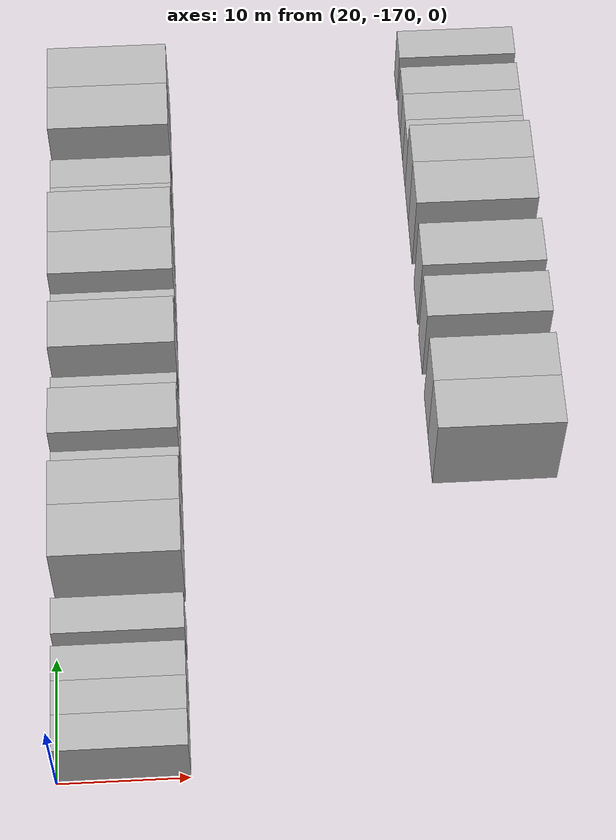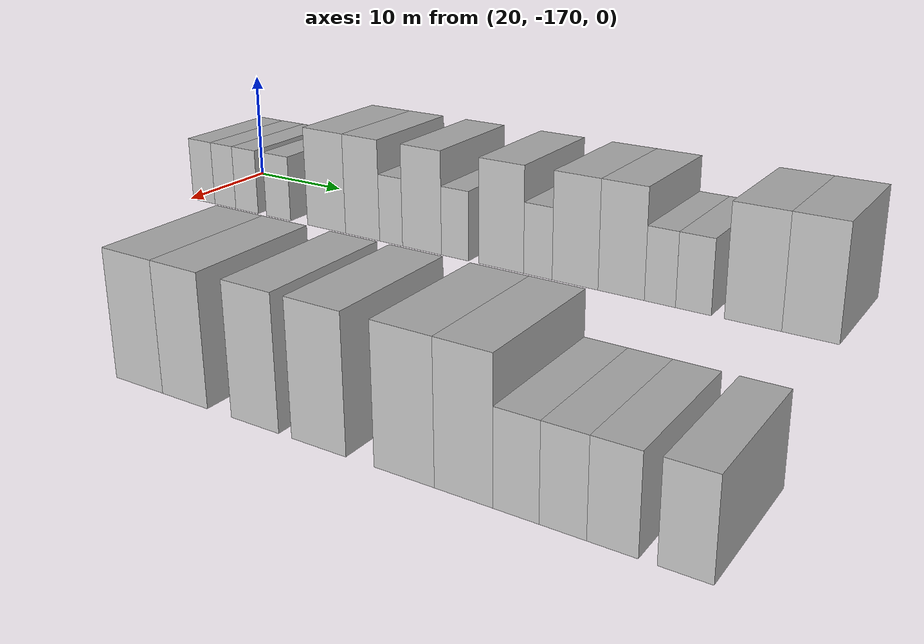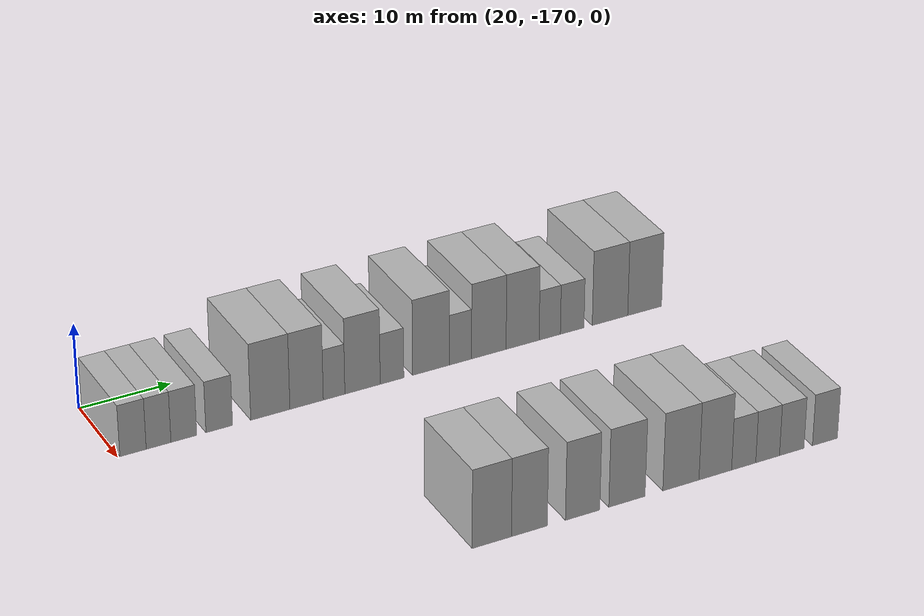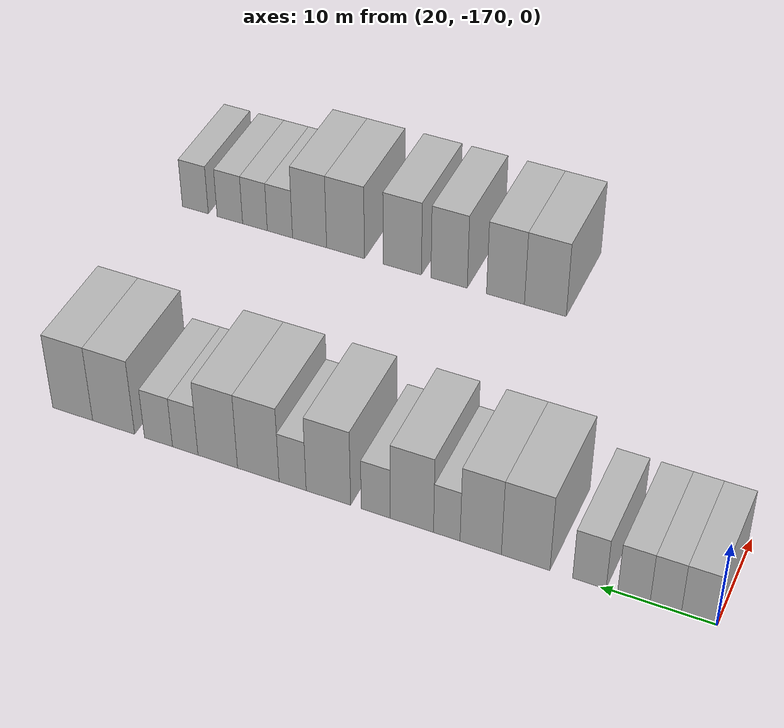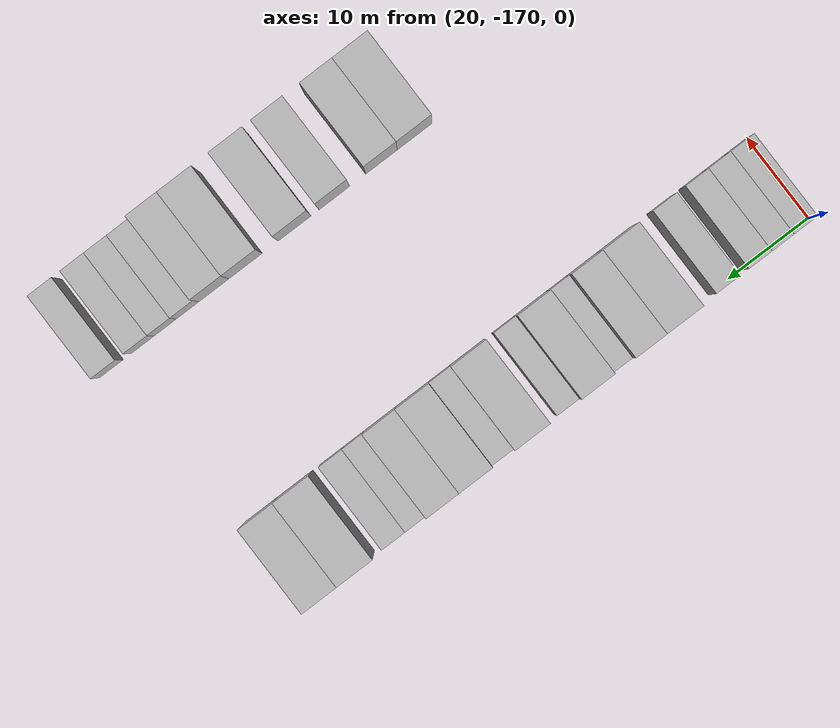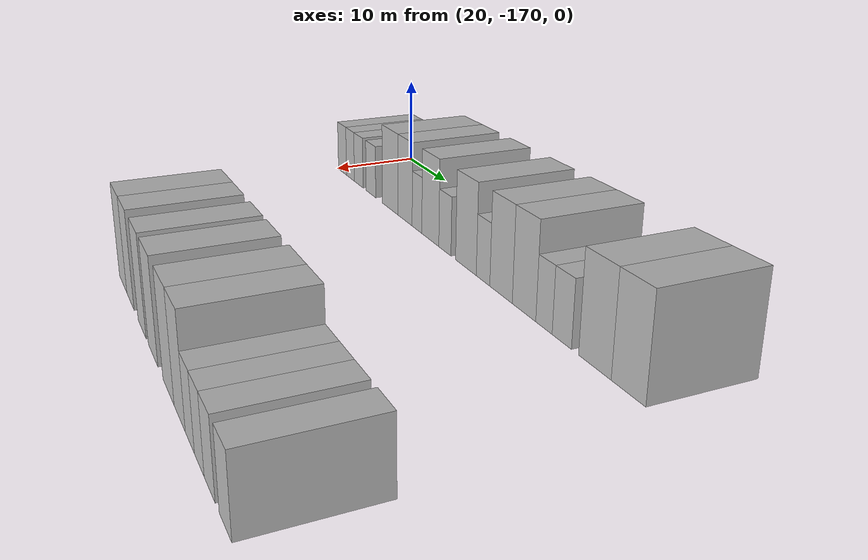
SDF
<sdf version="1.6">
 <world name="default">
  <model name="building_14">
   <static>1</static>
   <pose>25.0000 -168.3456 0 0.000000 0.000000 0.000000</pose>
   <link name="link">
    <pose>0 0 3.00 0 0 0</pose>
    <collision name="collision"><geometry><box><size>10.0000 2.8377 6.0000</size></box></geometry></collision>
    <visual name="visual">
     <cast_shadows>0</cast_shadows>
     <geometry><box><size>10.0000 2.8377 6.0000</size></box></geometry>
     <material>
      <script>
       <uri>model://HANNAS_wall/materials/scripts</uri>
       <uri>model://HANNAS_wall/materials/textures</uri>
       <name>vrc/HANNAS_wall</name>
      </script>
     </material>
    </visual>
   </link>
  </model>
  <model name="building_15">
   <static>1</static>
   <pose>25.0000 -165.5896 0 0.000000 0.000000 0.000000</pose>
   <link name="link">
    <pose>0 0 3.00 0 0 0</pose>
    <collision name="collision"><geometry><box><size>10.0000 2.6744 6.0000</size></box></geometry></collision>
    <visual name="visual">
     <cast_shadows>0</cast_shadows>
     <geometry><box><size>10.0000 2.6744 6.0000</size></box></geometry>
     <material>
      <script>
       <uri>model://HANNAS_wall/materials/scripts</uri>
       <uri>model://HANNAS_wall/materials/textures</uri>
       <name>vrc/HANNAS_wall</name>
      </script>
     </material>
    </visual>
   </link>
  </model>
  <model name="building_16">
   <static>1</static>
   <pose>25.0000 -162.8514 0 0.000000 0.000000 0.000000</pose>
   <link name="link">
    <pose>0 0 3.00 0 0 0</pose>
    <collision name="collision"><geometry><box><size>10.0000 2.8020 6.0000</size></box></geometry></collision>
    <visual name="visual">
     <cast_shadows>0</cast_shadows>
     <geometry><box><size>10.0000 2.8020 6.0000</size></box></geometry>
     <material>
      <script>
       <uri>model://HANNAS_wall/materials/scripts</uri>
       <uri>model://HANNAS_wall/materials/textures</uri>
       <name>vrc/HANNAS_wall</name>
      </script>
     </material>
    </visual>
   </link>
  </model>
  <model name="building_17">
   <static>1</static>
   <pose>25.0000 -158.9862 0 0.000000 0.000000 0.000000</pose>
   <link name="link">
    <pose>0 0 3.00 0 0 0</pose>
    <collision name="collision"><geometry><box><size>10.0000 2.9284 6.0000</size></box></geometry></collision>
    <visual name="visual">
     <cast_shadows>0</cast_shadows>
     <geometry><box><size>10.0000 2.9284 6.0000</size></box></geometry>
     <material>
      <script>
       <uri>model://HANNAS_wall/materials/scripts</uri>
       <uri>model://HANNAS_wall/materials/textures</uri>
       <name>vrc/HANNAS_wall</name>
      </script>
     </material>
    </visual>
   </link>
  </model>
  <model name="building_18">
   <static>1</static>
   <pose>25.0000 -153.3466 0 0.000000 0.000000 0.000000</pose>
   <link name="link">
    <pose>0 0 4.50 0 0 0</pose>
    <collision name="collision"><geometry><box><size>10.0000 4.3508 9.0000</size></box></geometry></collision>
    <visual name="visual">
     <cast_shadows>0</cast_shadows>
     <geometry><box><size>10.0000 4.3508 9.0000</size></box></geometry>
     <material>
      <script>
       <uri>model://HANNAS_wall/materials/scripts</uri>
       <uri>model://HANNAS_wall/materials/textures</uri>
       <name>vrc/HANNAS_wall</name>
      </script>
     </material>
    </visual>
   </link>
  </model>
  <model name="building_19">
   <static>1</static>
   <pose>25.0000 -149.2983 0 0.000000 0.000000 0.000000</pose>
   <link name="link">
    <pose>0 0 4.50 0 0 0</pose>
    <collision name="collision"><geometry><box><size>10.0000 3.7458 9.0000</size></box></geometry></collision>
    <visual name="visual">
     <cast_shadows>0</cast_shadows>
     <geometry><box><size>10.0000 3.7458 9.0000</size></box></geometry>
     <material>
      <script>
       <uri>model://HANNAS_wall/materials/scripts</uri>
       <uri>model://HANNAS_wall/materials/textures</uri>
       <name>vrc/HANNAS_wall</name>
      </script>
     </material>
    </visual>
   </link>
  </model>
  <model name="building_20">
   <static>1</static>
   <pose>25.0000 -146.2084 0 0.000000 0.000000 0.000000</pose>
   <link name="link">
    <pose>0 0 3.00 0 0 0</pose>
    <collision name="collision"><geometry><box><size>10.0000 2.4340 6.0000</size></box></geometry></collision>
    <visual name="visual">
     <cast_shadows>0</cast_shadows>
     <geometry><box><size>10.0000 2.4340 6.0000</size></box></geometry>
     <material>
      <script>
       <uri>model://HANNAS_wall/materials/scripts</uri>
       <uri>model://HANNAS_wall/materials/textures</uri>
       <name>vrc/HANNAS_wall</name>
      </script>
     </material>
    </visual>
   </link>
  </model>
  <model name="building_21">
   <static>1</static>
   <pose>25.0000 -142.9837 0 0.000000 0.000000 0.000000</pose>
   <link name="link">
    <pose>0 0 4.50 0 0 0</pose>
    <collision name="collision"><geometry><box><size>10.0000 4.0155 9.0000</size></box></geometry></collision>
    <visual name="visual">
     <cast_shadows>0</cast_shadows>
     <geometry><box><size>10.0000 4.0155 9.0000</size></box></geometry>
     <material>
      <script>
       <uri>model://HANNAS_wall/materials/scripts</uri>
       <uri>model://HANNAS_wall/materials/textures</uri>
       <name>vrc/HANNAS_wall</name>
      </script>
     </material>
    </visual>
   </link>
  </model>
  <model name="building_22">
   <static>1</static>
   <pose>25.0000 -139.6213 0 0.000000 0.000000 0.000000</pose>
   <link name="link">
    <pose>0 0 3.00 0 0 0</pose>
    <collision name="collision"><geometry><box><size>10.0000 2.7093 6.0000</size></box></geometry></collision>
    <visual name="visual">
     <cast_shadows>0</cast_shadows>
     <geometry><box><size>10.0000 2.7093 6.0000</size></box></geometry>
     <material>
      <script>
       <uri>model://HANNAS_wall/materials/scripts</uri>
       <uri>model://HANNAS_wall/materials/textures</uri>
       <name>vrc/HANNAS_wall</name>
      </script>
     </material>
    </visual>
   </link>
  </model>
  <model name="building_23">
   <static>1</static>
   <pose>25.0000 -135.1451 0 0.000000 0.000000 0.000000</pose>
   <link name="link">
    <pose>0 0 4.50 0 0 0</pose>
    <collision name="collision"><geometry><box><size>10.0000 4.2429 9.0000</size></box></geometry></collision>
    <visual name="visual">
     <cast_shadows>0</cast_shadows>
     <geometry><box><size>10.0000 4.2429 9.0000</size></box></geometry>
     <material>
      <script>
       <uri>model://HANNAS_wall/materials/scripts</uri>
       <uri>model://HANNAS_wall/materials/textures</uri>
       <name>vrc/HANNAS_wall</name>
      </script>
     </material>
    </visual>
   </link>
  </model>
  <model name="building_24">
   <static>1</static>
   <pose>25.0000 -131.7192 0 0.000000 0.000000 0.000000</pose>
   <link name="link">
    <pose>0 0 3.00 0 0 0</pose>
    <collision name="collision"><geometry><box><size>10.0000 2.6089 6.0000</size></box></geometry></collision>
    <visual name="visual">
     <cast_shadows>0</cast_shadows>
     <geometry><box><size>10.0000 2.6089 6.0000</size></box></geometry>
     <material>
      <script>
       <uri>model://HANNAS_wall/materials/scripts</uri>
       <uri>model://HANNAS_wall/materials/textures</uri>
       <name>vrc/HANNAS_wall</name>
      </script>
     </material>
    </visual>
   </link>
  </model>
  <model name="building_25">
   <static>1</static>
   <pose>25.0000 -128.3897 0 0.000000 0.000000 0.000000</pose>
   <link name="link">
    <pose>0 0 4.50 0 0 0</pose>
    <collision name="collision"><geometry><box><size>10.0000 4.0501 9.0000</size></box></geometry></collision>
    <visual name="visual">
     <cast_shadows>0</cast_shadows>
     <geometry><box><size>10.0000 4.0501 9.0000</size></box></geometry>
     <material>
      <script>
       <uri>model://HANNAS_wall/materials/scripts</uri>
       <uri>model://HANNAS_wall/materials/textures</uri>
       <name>vrc/HANNAS_wall</name>
      </script>
     </material>
    </visual>
   </link>
  </model>
  <model name="building_26">
   <static>1</static>
   <pose>25.0000 -124.4075 0 0.000000 0.000000 0.000000</pose>
   <link name="link">
    <pose>0 0 4.50 0 0 0</pose>
    <collision name="collision"><geometry><box><size>10.0000 3.9143 9.0000</size></box></geometry></collision>
    <visual name="visual">
     <cast_shadows>0</cast_shadows>
     <geometry><box><size>10.0000 3.9143 9.0000</size></box></geometry>
     <material>
      <script>
       <uri>model://HANNAS_wall/materials/scripts</uri>
       <uri>model://HANNAS_wall/materials/textures</uri>
       <name>vrc/HANNAS_wall</name>
      </script>
     </material>
    </visual>
   </link>
  </model>
  <model name="building_27">
   <static>1</static>
   <pose>25.0000 -121.1815 0 0.000000 0.000000 0.000000</pose>
   <link name="link">
    <pose>0 0 3.00 0 0 0</pose>
    <collision name="collision"><geometry><box><size>10.0000 2.5376 6.0000</size></box></geometry></collision>
    <visual name="visual">
     <cast_shadows>0</cast_shadows>
     <geometry><box><size>10.0000 2.5376 6.0000</size></box></geometry>
     <material>
      <script>
       <uri>model://HANNAS_wall/materials/scripts</uri>
       <uri>model://HANNAS_wall/materials/textures</uri>
       <name>vrc/HANNAS_wall</name>
      </script>
     </material>
    </visual>
   </link>
  </model>
  <model name="building_28">
   <static>1</static>
   <pose>25.0000 -118.4979 0 0.000000 0.000000 0.000000</pose>
   <link name="link">
    <pose>0 0 3.00 0 0 0</pose>
    <collision name="collision"><geometry><box><size>10.0000 2.8295 6.0000</size></box></geometry></collision>
    <visual name="visual">
     <cast_shadows>0</cast_shadows>
     <geometry><box><size>10.0000 2.8295 6.0000</size></box></geometry>
     <material>
      <script>
       <uri>model://HANNAS_wall/materials/scripts</uri>
       <uri>model://HANNAS_wall/materials/textures</uri>
       <name>vrc/HANNAS_wall</name>
      </script>
     </material>
    </visual>
   </link>
  </model>
  <model name="building_29">
   <static>1</static>
   <pose>25.0000 -113.9356 0 0.000000 0.000000 0.000000</pose>
   <link name="link">
    <pose>0 0 4.50 0 0 0</pose>
    <collision name="collision"><geometry><box><size>10.0000 4.2951 9.0000</size></box></geometry></collision>
    <visual name="visual">
     <cast_shadows>0</cast_shadows>
     <geometry><box><size>10.0000 4.2951 9.0000</size></box></geometry>
     <material>
      <script>
       <uri>model://HANNAS_wall/materials/scripts</uri>
       <uri>model://HANNAS_wall/materials/textures</uri>
       <name>vrc/HANNAS_wall</name>
      </script>
     </material>
    </visual>
   </link>
  </model>
  <model name="building_30">
   <static>1</static>
   <pose>25.0000 -109.7201 0 0.000000 0.000000 0.000000</pose>
   <link name="link">
    <pose>0 0 4.50 0 0 0</pose>
    <collision name="collision"><geometry><box><size>10.0000 4.1360 9.0000</size></box></geometry></collision>
    <visual name="visual">
     <cast_shadows>0</cast_shadows>
     <geometry><box><size>10.0000 4.1360 9.0000</size></box></geometry>
     <material>
      <script>
       <uri>model://HANNAS_wall/materials/scripts</uri>
       <uri>model://HANNAS_wall/materials/textures</uri>
       <name>vrc/HANNAS_wall</name>
      </script>
     </material>
    </visual>
   </link>
  </model>
  <model name="building_121">
   <static>1</static>
   <pose>55.0000 -143.9772 0 0.000000 0.000000 0.000000</pose>
   <link name="link">
    <pose>0 0 4.50 0 0 0</pose>
    <collision name="collision"><geometry><box><size>10.0000 4.2487 9.0000</size></box></geometry></collision>
    <visual name="visual">
     <cast_shadows>0</cast_shadows>
     <geometry><box><size>10.0000 4.2487 9.0000</size></box></geometry>
     <material>
      <script>
       <uri>model://HANNAS_wall/materials/scripts</uri>
       <uri>model://HANNAS_wall/materials/textures</uri>
       <name>vrc/HANNAS_wall</name>
      </script>
     </material>
    </visual>
   </link>
  </model>
  <model name="building_122">
   <static>1</static>
   <pose>55.0000 -139.9049 0 0.000000 0.000000 0.000000</pose>
   <link name="link">
    <pose>0 0 4.50 0 0 0</pose>
    <collision name="collision"><geometry><box><size>10.0000 3.8959 9.0000</size></box></geometry></collision>
    <visual name="visual">
     <cast_shadows>0</cast_shadows>
     <geometry><box><size>10.0000 3.8959 9.0000</size></box></geometry>
     <material>
      <script>
       <uri>model://HANNAS_wall/materials/scripts</uri>
       <uri>model://HANNAS_wall/materials/textures</uri>
       <name>vrc/HANNAS_wall</name>
      </script>
     </material>
    </visual>
   </link>
  </model>
  <model name="building_123">
   <static>1</static>
   <pose>55.0000 -134.0569 0 0.000000 0.000000 0.000000</pose>
   <link name="link">
    <pose>0 0 4.50 0 0 0</pose>
    <collision name="collision"><geometry><box><size>10.0000 3.8002 9.0000</size></box></geometry></collision>
    <visual name="visual">
     <cast_shadows>0</cast_shadows>
     <geometry><box><size>10.0000 3.8002 9.0000</size></box></geometry>
     <material>
      <script>
       <uri>model://HANNAS_wall/materials/scripts</uri>
       <uri>model://HANNAS_wall/materials/textures</uri>
       <name>vrc/HANNAS_wall</name>
      </script>
     </material>
    </visual>
   </link>
  </model>
  <model name="building_124">
   <static>1</static>
   <pose>55.0000 -129.1270 0 0.000000 0.000000 0.000000</pose>
   <link name="link">
    <pose>0 0 4.50 0 0 0</pose>
    <collision name="collision"><geometry><box><size>10.0000 4.0596 9.0000</size></box></geometry></collision>
    <visual name="visual">
     <cast_shadows>0</cast_shadows>
     <geometry><box><size>10.0000 4.0596 9.0000</size></box></geometry>
     <material>
      <script>
       <uri>model://HANNAS_wall/materials/scripts</uri>
       <uri>model://HANNAS_wall/materials/textures</uri>
       <name>vrc/HANNAS_wall</name>
      </script>
     </material>
    </visual>
   </link>
  </model>
  <model name="building_125">
   <static>1</static>
   <pose>55.0000 -123.0445 0 0.000000 0.000000 0.000000</pose>
   <link name="link">
    <pose>0 0 4.50 0 0 0</pose>
    <collision name="collision"><geometry><box><size>10.0000 4.1054 9.0000</size></box></geometry></collision>
    <visual name="visual">
     <cast_shadows>0</cast_shadows>
     <geometry><box><size>10.0000 4.1054 9.0000</size></box></geometry>
     <material>
      <script>
       <uri>model://HANNAS_wall/materials/scripts</uri>
       <uri>model://HANNAS_wall/materials/textures</uri>
       <name>vrc/HANNAS_wall</name>
      </script>
     </material>
    </visual>
   </link>
  </model>
  <model name="building_126">
   <static>1</static>
   <pose>55.0000 -119.1241 0 0.000000 0.000000 0.000000</pose>
   <link name="link">
    <pose>0 0 4.50 0 0 0</pose>
    <collision name="collision"><geometry><box><size>10.0000 3.7354 9.0000</size></box></geometry></collision>
    <visual name="visual">
     <cast_shadows>0</cast_shadows>
     <geometry><box><size>10.0000 3.7354 9.0000</size></box></geometry>
     <material>
      <script>
       <uri>model://HANNAS_wall/materials/scripts</uri>
       <uri>model://HANNAS_wall/materials/textures</uri>
       <name>vrc/HANNAS_wall</name>
      </script>
     </material>
    </visual>
   </link>
  </model>
  <model name="building_127">
   <static>1</static>
   <pose>55.0000 -115.8616 0 0.000000 0.000000 0.000000</pose>
   <link name="link">
    <pose>0 0 3.00 0 0 0</pose>
    <collision name="collision"><geometry><box><size>10.0000 2.7895 6.0000</size></box></geometry></collision>
    <visual name="visual">
     <cast_shadows>0</cast_shadows>
     <geometry><box><size>10.0000 2.7895 6.0000</size></box></geometry>
     <material>
      <script>
       <uri>model://HANNAS_wall/materials/scripts</uri>
       <uri>model://HANNAS_wall/materials/textures</uri>
       <name>vrc/HANNAS_wall</name>
      </script>
     </material>
    </visual>
   </link>
  </model>
  <model name="building_128">
   <static>1</static>
   <pose>55.0000 -113.0891 0 0.000000 0.000000 0.000000</pose>
   <link name="link">
    <pose>0 0 3.00 0 0 0</pose>
    <collision name="collision"><geometry><box><size>10.0000 2.7555 6.0000</size></box></geometry></collision>
    <visual name="visual">
     <cast_shadows>0</cast_shadows>
     <geometry><box><size>10.0000 2.7555 6.0000</size></box></geometry>
     <material>
      <script>
       <uri>model://HANNAS_wall/materials/scripts</uri>
       <uri>model://HANNAS_wall/materials/textures</uri>
       <name>vrc/HANNAS_wall</name>
      </script>
     </material>
    </visual>
   </link>
  </model>
  <model name="building_129">
   <static>1</static>
   <pose>55.0000 -110.2818 0 0.000000 0.000000 0.000000</pose>
   <link name="link">
    <pose>0 0 3.00 0 0 0</pose>
    <collision name="collision"><geometry><box><size>10.0000 2.8591 6.0000</size></box></geometry></collision>
    <visual name="visual">
     <cast_shadows>0</cast_shadows>
     <geometry><box><size>10.0000 2.8591 6.0000</size></box></geometry>
     <material>
      <script>
       <uri>model://HANNAS_wall/materials/scripts</uri>
       <uri>model://HANNAS_wall/materials/textures</uri>
       <name>vrc/HANNAS_wall</name>
      </script>
     </material>
    </visual>
   </link>
  </model>
  <model name="building_130">
   <static>1</static>
   <pose>55.0000 -106.3839 0 0.000000 0.000000 0.000000</pose>
   <link name="link">
    <pose>0 0 3.00 0 0 0</pose>
    <collision name="collision"><geometry><box><size>10.0000 2.9367 6.0000</size></box></geometry></collision>
    <visual name="visual">
     <cast_shadows>0</cast_shadows>
     <geometry><box><size>10.0000 2.9367 6.0000</size></box></geometry>
     <material>
      <script>
       <uri>model://HANNAS_wall/materials/scripts</uri>
       <uri>model://HANNAS_wall/materials/textures</uri>
       <name>vrc/HANNAS_wall</name>
      </script>
     </material>
    </visual>
   </link>
  </model>
 </world>
</sdf>
